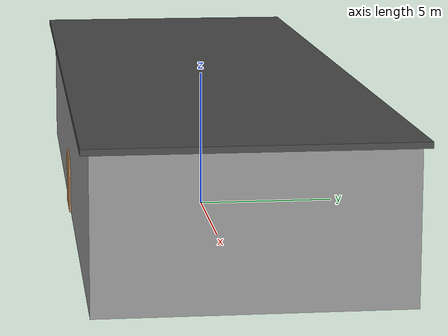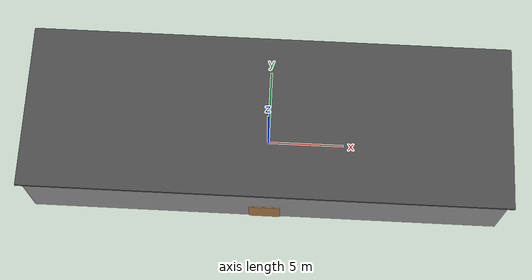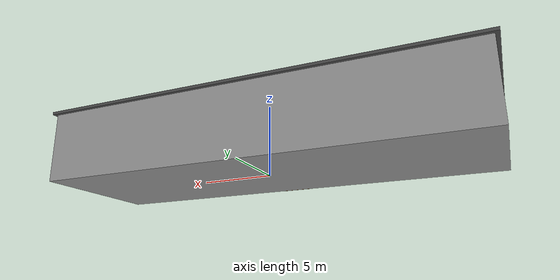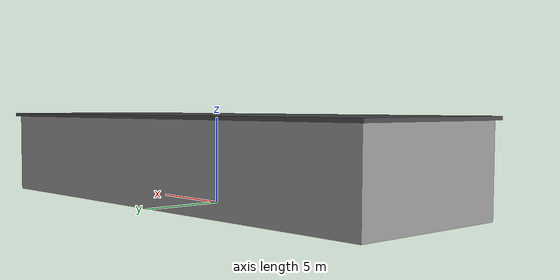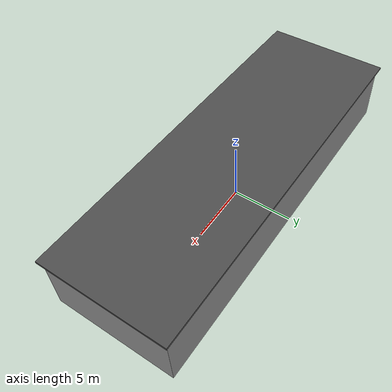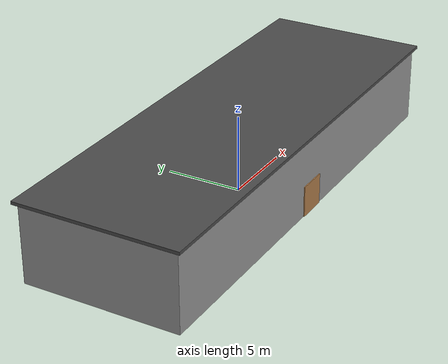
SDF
<?xml version="1.0" ?>
<sdf version="1.6">
  <model name="main_building">
    <static>true</static>
    <link name="link">
      <!-- PHYSICS/COLLISION OPTIMIZATION: Simple Box for collision -->
      <collision name="collision">
        <pose>0 0 2.5 0 0 0</pose>
        <geometry><box><size>30 10 5</size></box></geometry>
      </collision>

      <!-- VISUAL: A simple building look -->
      <visual name="walls">
        <pose>0 0 2.5 0 0 0</pose>
        <geometry><box><size>30 10 5</size></box></geometry>
        <material><script><uri>file://media/materials/scripts/gazebo.material</uri><name>Gazebo/Grey</name></script></material>
      </visual>
      <visual name="roof">
        <pose>0 0 5.1 0 0 0</pose>
        <geometry><box><size>30.5 10.5 0.2</size></box></geometry>
        <material><script><uri>file://media/materials/scripts/gazebo.material</uri><name>Gazebo/DarkGrey</name></script></material>
      </visual>
      <visual name="door">
        <pose>0 -5.01 1 0 0 0</pose>
        <geometry><box><size>2 0.1 2</size></box></geometry>
        <material><script><uri>file://media/materials/scripts/gazebo.material</uri><name>Gazebo/Wood</name></script></material>
      </visual>
    </link>
  </model>
</sdf>
